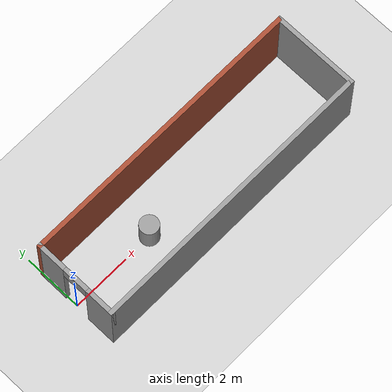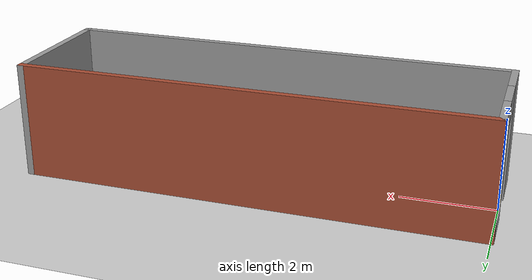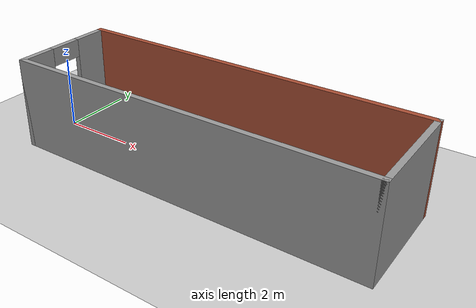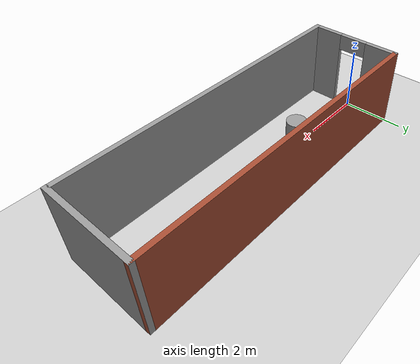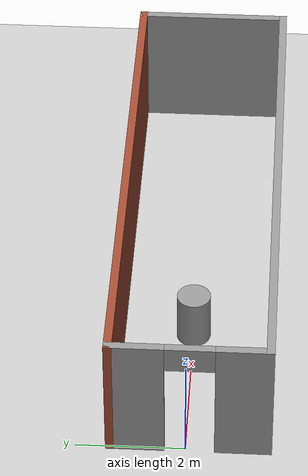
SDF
<sdf version="1.7">
 <world name="default">
  <light name="sun" type="directional">
   <pose>0 0 10 0 -0 0</pose>
   <diffuse>0.8 0.8 0.8 1</diffuse>
   <specular>0.2 0.2 0.2 1</specular>
   <attenuation>
    <range>1000</range>
    <constant>0.9</constant>
    <linear>0.01</linear>
    <quadratic>0.001</quadratic>
   </attenuation>
   <direction>-0.5 0.1 -0.9</direction>
   <spot><inner_angle>0</inner_angle><outer_angle>0</outer_angle><falloff>0</falloff></spot>
  </light>
  <model name="ground_plane">
   <static>1</static>
   <link name="link">
    <collision name="collision">
     <geometry><plane><normal>0 0 1</normal><size>100 100</size></plane></geometry>
     <surface>
      <contact><collide_bitmask>65535</collide_bitmask></contact>
      <friction><ode><mu>100</mu><mu2>50</mu2></ode></friction>
     </surface>
    </collision>
    <visual name="visual">
     <cast_shadows>0</cast_shadows>
     <geometry><plane><normal>0 0 1</normal><size>100 100</size></plane></geometry>
     <material>
      <script><uri>file://media/materials/scripts/gazebo.material</uri><name>Gazebo/Grey</name></script>
     </material>
    </visual>
   </link>
  </model>
  <gravity>0 0 -9.8</gravity>
  <magnetic_field>6e-06 2.3e-05 -4.2e-05</magnetic_field>
  <atmosphere type="adiabatic"/>
  <physics type="ode">
   <max_step_size>0.001</max_step_size>
   <real_time_factor>1</real_time_factor>
   <real_time_update_rate>1000</real_time_update_rate>
  </physics>
  <scene><ambient>0.4 0.4 0.4 1</ambient><background>0.7 0.7 0.7 1</background><shadows>1</shadows></scene>
  <spherical_coordinates>
   <surface_model>EARTH_WGS84</surface_model>
   <latitude_deg>0</latitude_deg>
   <longitude_deg>0</longitude_deg>
   <elevation>0</elevation>
   <heading_deg>0</heading_deg>
  </spherical_coordinates>
  <model name="Mapa_Corredor">
   <pose>4.9387 0.388234 0 0 -0 0</pose>
   <link name="Wall_0">
    <pose>-4.925 -0.4425 0 0 -0 -1.5708</pose>
    <visual name="Wall_0_Visual_0">
     <pose>-0.9675 0 1.25 0 -0 0</pose>
     <geometry><box><size>1.065 0.15 2.5</size></box></geometry>
     <material>
      <script><uri>file://media/materials/scripts/gazebo.material</uri><name>Gazebo/Grey</name></script>
      <ambient>1 1 1 1</ambient>
     </material>
     <meta><layer>0</layer></meta>
    </visual>
    <collision name="Wall_0_Collision_0">
     <geometry><box><size>1.065 0.15 2.5</size></box></geometry>
     <pose>-0.9675 0 1.25 0 -0 0</pose>
    </collision>
    <visual name="Wall_0_Visual_1">
     <pose>0.9825 0 1.25 0 -0 0</pose>
     <geometry><box><size>1.035 0.15 2.5</size></box></geometry>
     <material>
      <script><uri>file://media/materials/scripts/gazebo.material</uri><name>Gazebo/Grey</name></script>
      <ambient>1 1 1 1</ambient>
     </material>
     <meta><layer>0</layer></meta>
    </visual>
    <collision name="Wall_0_Collision_1">
     <geometry><box><size>1.035 0.15 2.5</size></box></geometry>
     <pose>0.9825 0 1.25 0 -0 0</pose>
    </collision>
    <visual name="Wall_0_Visual_2">
     <pose>0.015 0 2.25 0 -0 0</pose>
     <geometry><box><size>0.9 0.15 0.5</size></box></geometry>
     <material>
      <script><uri>file://media/materials/scripts/gazebo.material</uri><name>Gazebo/Grey</name></script>
      <ambient>1 1 1 1</ambient>
     </material>
     <meta><layer>0</layer></meta>
    </visual>
    <collision name="Wall_0_Collision_2">
     <geometry><box><size>0.9 0.15 0.5</size></box></geometry>
     <pose>0.015 0 2.25 0 -0 0</pose>
    </collision>
   </link>
   <link name="Wall_3">
    <collision name="Wall_3_Collision">
     <geometry><box><size>10 0.15 2.5</size></box></geometry>
     <pose>0 0 1.25 0 -0 0</pose>
    </collision>
    <visual name="Wall_3_Visual">
     <pose>0 0 1.25 0 -0 0</pose>
     <geometry><box><size>10 0.15 2.5</size></box></geometry>
     <material>
      <script><uri>file://media/materials/scripts/gazebo.material</uri><name>Gazebo/Grey</name></script>
      <ambient>1 1 1 1</ambient>
     </material>
     <meta><layer>0</layer></meta>
    </visual>
    <pose>0 -1.8675 0 0 -0 0</pose>
   </link>
   <link name="Wall_4">
    <collision name="Wall_4_Collision">
     <geometry><box><size>3 0.15 2.5</size></box></geometry>
     <pose>0 0 1.25 0 -0 0</pose>
    </collision>
    <visual name="Wall_4_Visual">
     <pose>0 0 1.25 0 -0 0</pose>
     <geometry><box><size>3 0.15 2.5</size></box></geometry>
     <material>
      <script><uri>file://media/materials/scripts/gazebo.material</uri><name>Gazebo/Grey</name></script>
      <ambient>1 1 1 1</ambient>
     </material>
     <meta><layer>0</layer></meta>
    </visual>
    <pose>4.925 -0.4425 0 0 -0 1.5708</pose>
   </link>
   <link name="Wall_5">
    <collision name="Wall_5_Collision">
     <geometry><box><size>10 0.15 2.5</size></box></geometry>
     <pose>0 0 1.25 0 -0 0</pose>
    </collision>
    <visual name="Wall_5_Visual">
     <pose>0 0 1.25 0 -0 0</pose>
     <geometry><box><size>10 0.15 2.5</size></box></geometry>
     <material>
      <script><uri>file://media/materials/scripts/gazebo.material</uri><name>Gazebo/Bricks</name></script>
      <ambient>1 1 1 1</ambient>
     </material>
     <meta><layer>0</layer></meta>
    </visual>
    <pose>0 0.9825 0 0 -0 3.14159</pose>
   </link>
   <static>1</static>
  </model>
  <model name="unit_cylinder">
   <pose>3 -0 0.499991 0 -0 0</pose>
   <link name="link">
    <inertial>
     <mass>100</mass>
     <inertia><ixx>0.145833</ixx><ixy>0</ixy><ixz>0</ixz><iyy>0.145833</iyy><iyz>0</iyz><izz>0.125</izz></inertia>
    </inertial>
    <collision name="collision">
     <geometry><cylinder><radius>0.316978</radius><length>1</length></cylinder></geometry>
    </collision>
    <visual name="visual">
     <geometry><cylinder><radius>0.316978</radius><length>1</length></cylinder></geometry>
     <material>
      <script><name>Gazebo/Grey</name><uri>file://media/materials/scripts/gazebo.material</uri></script>
     </material>
    </visual>
   </link>
  </model>
 </world>
</sdf>
